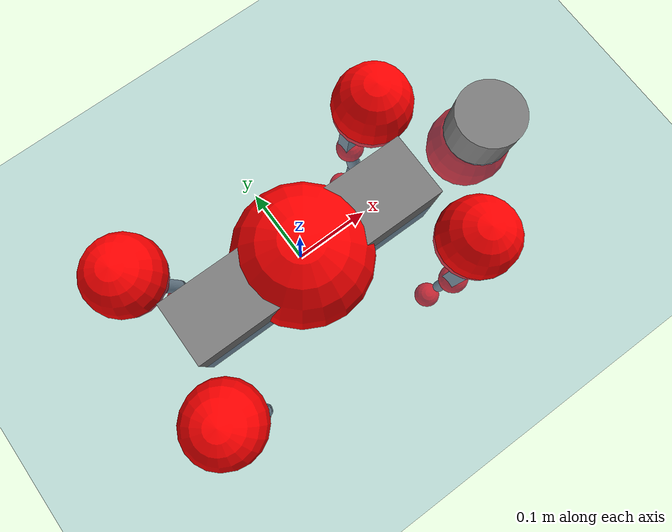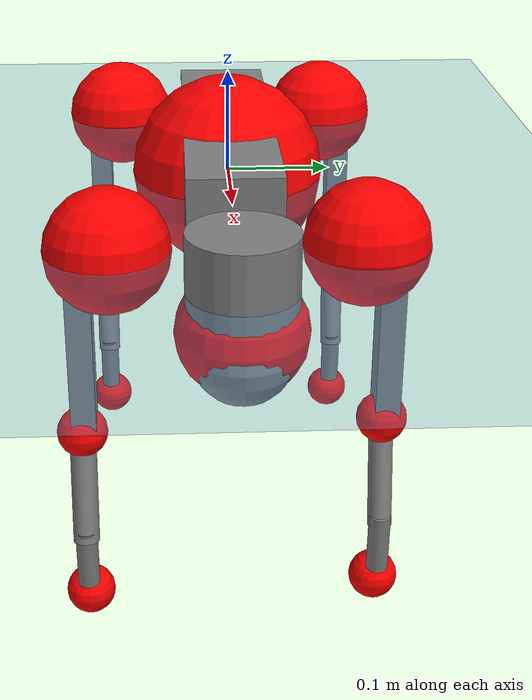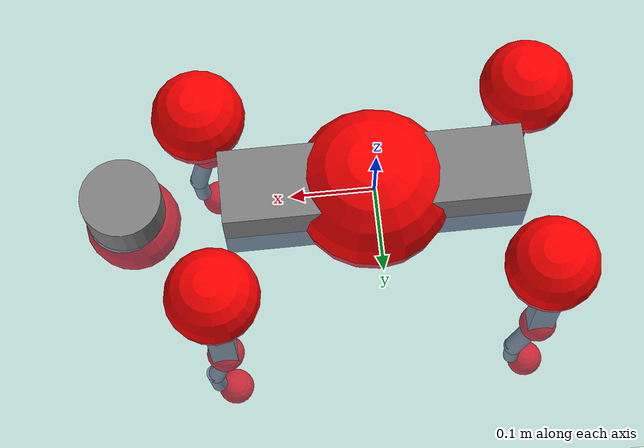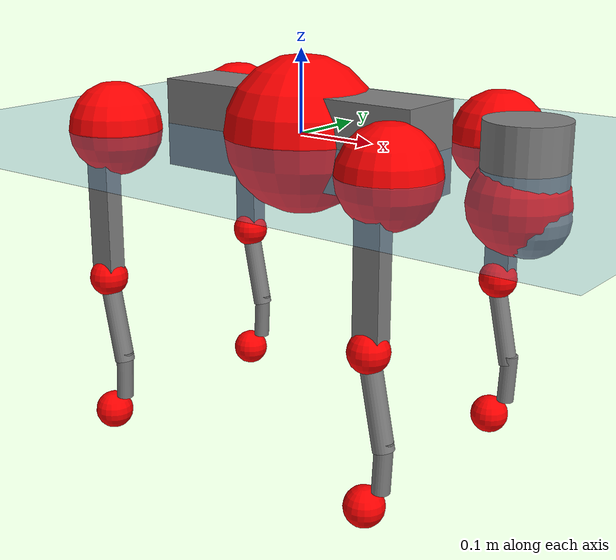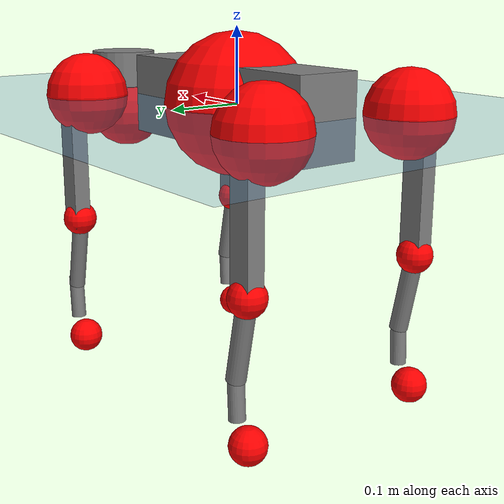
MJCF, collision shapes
<mujoco model="go2">
  <compiler angle="radian" assetdir="assets" balanceinertia="true" inertiafromgeom="false"/>

  <option timestep="0.005" density="1.2" viscosity="2e-05"/>

  <size nkey="1"/>

  <visual>
    <quality shadowsize="8192"/>
    <map shadowclip="0.5"/>
  </visual>

  <default>
    <default class="/">
      <geom contype="0" conaffinity="0" group="1" solref="-1000 -80"/>
      <site size="0.01 0.005 0.005" group="5"/>
      <general forcelimited="true" biastype="affine" gainprm="20" biasprm="0 -20 -0.5"/>
      <default class="go2">
        <joint armature="0.01" damping="0.01" frictionloss="0.2"/>
        <geom condim="1" margin="0.001"/>
        <default class="visual">
          <geom type="mesh" group="2"/>
        </default>
        <default class="collision">
          <geom group="3"/>
          <default class="foot">
            <geom size="0.022 0 0" condim="6" priority="1" friction="0.8 0.02 0.01" solimp="0.015 1 0.022"/>
          </default>
        </default>
        <default class="reward_collision_sphere">
          <geom group="5" rgba="1 0 0 1"/>
        </default>
      </default>
    </default>
  </default>

  <asset>
    <texture type="skybox" colorspace="auto" name="//unnamed_texture_0" builtin="gradient" rgb1="0.95 0.95 0.95" rgb2="0.95 0.95 0.95" width="100" height="600"/>
    <texture type="2d" colorspace="auto" name="texplane" builtin="checker" rgb1="0.345 0.575 0.748" rgb2="0.345 0.575 0.748" markrgb="1 1 1" width="512" height="512"/>
    <material name="MatPlane" class="/" texture="texplane" texuniform="true" texrepeat="2 2" specular="0.9"/>
    <material name="metal" class="/" rgba="0.9 0.95 0.95 1"/>
    <material name="black" class="/" rgba="0 0 0 1"/>
    <material name="white" class="/"/>
    <material name="gray" class="/" rgba="0.671705 0.692426 0.77427 1"/>
    <mesh name="base_0" class="/" file="base_0.obj"/>
    <mesh name="base_1" class="/" file="base_1.obj"/>
    <mesh name="base_2" class="/" file="base_2.obj"/>
    <mesh name="base_3" class="/" file="base_3.obj"/>
    <mesh name="base_4" class="/" file="base_4.obj"/>
    <mesh name="hip_0" class="/" file="hip_0.obj"/>
    <mesh name="hip_1" class="/" file="hip_1.obj"/>
    <mesh name="thigh_0" class="/" file="thigh_0.obj"/>
    <mesh name="thigh_1" class="/" file="thigh_1.obj"/>
    <mesh name="thigh_mirror_0" class="/" file="thigh_mirror_0.obj"/>
    <mesh name="thigh_mirror_1" class="/" file="thigh_mirror_1.obj"/>
    <mesh name="calf_0" class="/" file="calf_0.obj"/>
    <mesh name="calf_1" class="/" file="calf_1.obj"/>
    <mesh name="calf_mirror_0" class="/" file="calf_mirror_0.obj"/>
    <mesh name="calf_mirror_1" class="/" file="calf_mirror_1.obj"/>
    <mesh name="foot" class="/" file="foot.obj"/>
  </asset>

  <worldbody>
    <geom name="floor" class="/" size="100 100 0.125" type="plane" group="0" material="MatPlane"/>
    <light name="toplight_shadow" class="/" pos="0 0 5" dir="0.0990148 0.0990148 -0.990148" type="directional" ambient="0.04 0.04 0.04" diffuse="0.55 0.55 0.55" specular="0.12 0.12 0.12"/>
    <light name="toplight_fill" class="/" pos="0 0 5" dir="0.0990148 0.0990148 -0.990148" type="directional" castshadow="false" ambient="0.04 0.04 0.04" diffuse="0.3 0.3 0.3" specular="0.08 0.08 0.08"/>
    <body name="trunk" childclass="go2" pos="0.00255247 -0.000552265 0.000324519" quat="0.999999 0.000354791 0.00112303 -0.000102066">
      <inertial pos="0.0189295 -0.000489382 -0.00478737" quat="-0.00152684 0.7138 -0.00412001 0.700335" mass="5.55741" diaginertia="0.118578 0.079499 0.0102971"/>
      <joint name="//unnamed_joint_0" type="free" armature="0" damping="0" frictionloss="0"/>
      <geom name="//unnamed_geom_1" class="visual" material="black" mesh="base_0"/>
      <geom name="//unnamed_geom_2" class="visual" material="black" mesh="base_1"/>
      <geom name="//unnamed_geom_3" class="visual" material="black" mesh="base_2"/>
      <geom name="//unnamed_geom_4" class="visual" material="white" mesh="base_3"/>
      <geom name="//unnamed_geom_5" class="visual" material="gray" mesh="base_4"/>
      <geom name="trunk_1" class="collision" size="0.177409 0.0440928 0.0537602" type="box"/>
      <geom name="trunk_2" class="collision" size="0.0471581 0.0424423" pos="0.291556 0 0.00845095" type="cylinder"/>
      <geom name="trunk_3" class="collision" size="0.0443286" pos="0.29974 0 -0.0507057"/>
      <geom name="//unnamed_geom_9" class="reward_collision_sphere" size="0.0943162"/>
      <geom name="//unnamed_geom_10" class="reward_collision_sphere" size="0.0565897" pos="0.286441 0 -0.0380293"/>
      <site name="imu" pos="-0.0287421 0.000746465 0.0470925" size="0.00943162"/>
      <camera name="track" pos="0 -1.92277 0" quat="0.707107 0.707107 0 0" mode="trackcom"/>
      <camera name="ego_camera" pos="0.319177 0 0.0380293" quat="-0.5 -0.5 0.5 0.5"/>
      <body name="FL_hip" pos="0.198087 0.045941 0.00153514" quat="1 0.000251589 -0.000113906 0.000210673">
        <inertial pos="-0.00646841 0.000886789 9.50434e-05" quat="0.495833 0.499644 0.504867 0.499615" mass="0.565375" diaginertia="0.00101176 0.000484316 0.000206534"/>
        <joint name="FL_hip_joint" pos="0 0 0" axis="0.999889 0.00924888 0.0116553" range="-0.998694 1.04419" armature="0.00935076" damping="0.00764392" frictionloss="0.190836"/>
        <geom name="//unnamed_geom_11" class="visual" material="metal" mesh="hip_0"/>
        <geom name="//unnamed_geom_12" class="visual" material="gray" mesh="hip_1"/>
        <geom name="//unnamed_geom_13" class="collision" size="0.0433854 0.0188632" pos="0 0.0769109 0" quat="0.707107 0.707107 0 0" type="cylinder"/>
        <geom name="//unnamed_geom_14" class="reward_collision_sphere" size="0.0565897" pos="0 0.0672971 0"/>
        <body name="FL_thigh" pos="-0.00121233 0.0912856 0.00214587" quat="1 0.000724293 6.26248e-05 0.000512407">
          <inertial pos="-0.00291133 -0.0220802 -0.0297996" quat="0.829719 0.0850469 -0.0199704 0.551302" mass="0.943873" diaginertia="0.0065383 0.00474934 0.000384414"/>
          <joint name="FL_thigh_joint" pos="0 0 0" axis="-0.00712337 0.999944 0.00777254" range="-1.57262 3.49447" armature="0.00974162" damping="0.00493475" frictionloss="0.197584"/>
          <geom name="//unnamed_geom_15" class="visual" material="metal" mesh="thigh_0"/>
          <geom name="//unnamed_geom_16" class="visual" material="gray" mesh="thigh_1"/>
          <geom name="//unnamed_geom_17" class="collision" size="0.100447 0.0115537 0.0160338" pos="0 0 -0.0900027" quat="0.707107 0 0.707107 0" type="box"/>
          <body name="FL_calf" pos="-0.000640298 -0.00284175 -0.179415" quat="1 0.000114135 0.000210861 0.000154995">
            <inertial pos="0.00467502 -0.000468275 -0.117888" quat="0.709084 -0.00167588 -0.00406213 0.705111" mass="0.202308" diaginertia="0.0017135 0.00125264 2.33326e-05"/>
            <joint name="FL_calf_joint" pos="0 0 0" axis="-0.00650146 0.999978 -0.00149478" stiffness="0.0054155" range="-2.77153 -0.827318" armature="0.00939912" damping="0" frictionloss="0.188959"/>
            <geom name="//unnamed_geom_18" class="visual" material="gray" mesh="calf_0"/>
            <geom name="//unnamed_geom_19" class="visual" material="black" mesh="calf_1"/>
            <geom name="FL_calf0" class="collision" size="0.0113179 0.0565897" pos="0.00818403 0 -0.0507057" quat="0.994493 0 -0.104807 0" type="cylinder"/>
            <geom name="//unnamed_geom_21" class="collision" size="0.0103748 0.0306528" pos="0.0204601 0 -0.125074" quat="0.999688 0 0.0249974 0" type="cylinder"/>
            <geom name="//unnamed_geom_22" class="visual" pos="0 0 -0.180005" quat="1 0 0 0" material="black" mesh="foot"/>
            <geom name="FL_foot" class="foot" size="0.0183772" pos="-0.00204601 0 -0.180005"/>
            <geom name="//unnamed_geom_24" class="reward_collision_sphere" size="0.023579"/>
            <geom name="//unnamed_geom_25" class="reward_collision_sphere" size="0.023579" pos="-0.00204601 0 -0.180005"/>
            <site name="FL_foot" class="foot" pos="-0.00204601 0 -0.180005" size="0.00943162"/>
          </body>
        </body>
      </body>
      <body name="FR_hip" pos="0.198295 -0.0455805 -0.00198551" quat="1 0.000291846 -0.000497384 0.000451255">
        <inertial pos="-0.00513144 -0.0039767 -0.000641904" quat="0.499928 0.501446 0.494463 0.504113" mass="0.563562" diaginertia="0.000969266 0.000487602 0.000204126"/>
        <joint name="FR_hip_joint" pos="0 0 0" axis="0.999988 0.00426649 -0.0023744" stiffness="0.00478212" range="-1.0691 1.04749" armature="0.00897401" damping="0.0179303" frictionloss="0.169964"/>
        <geom name="//unnamed_geom_26" class="visual" pos="0 1.01308e-09 4.34531e-08" quat="4.63268e-05 1 0 0" material="metal" mesh="hip_0"/>
        <geom name="//unnamed_geom_27" class="visual" pos="0 1.64232e-09 -1.07476e-07" quat="4.63268e-05 1 0 0" material="gray" mesh="hip_1"/>
        <geom name="//unnamed_geom_28" class="collision" size="0.0433854 0.0188632" pos="0 -0.0769109 0" quat="0.707107 0.707107 0 0" type="cylinder"/>
        <geom name="//unnamed_geom_29" class="reward_collision_sphere" size="0.0565897" pos="0 -0.0672971 0"/>
        <body name="FR_thigh" pos="0.000463079 -0.0943962 -0.00137741" quat="1 -0.00031963 0.00013967 8.72984e-05">
          <inertial pos="-0.0032922 0.0200455 -0.0279778" quat="0.549931 -0.0185099 0.0882443 0.830329" mass="0.977598" diaginertia="0.00664843 0.00487381 0.00038908"/>
          <joint name="FR_thigh_joint" pos="0 0 0" axis="0.000308316 -1 -0.000627" range="-3.49077 1.60409" armature="0.00951711" damping="0.0163984" frictionloss="0.184142"/>
          <geom name="//unnamed_geom_30" class="visual" material="metal" mesh="thigh_mirror_0"/>
          <geom name="//unnamed_geom_31" class="visual" material="gray" mesh="thigh_mirror_1"/>
          <geom name="//unnamed_geom_32" class="collision" size="0.100447 0.0115537 0.0160338" pos="0 0 -0.0900027" quat="0.707107 0 0.707107 0" type="box"/>
          <body name="FR_calf" pos="-0.000591236 -0.00234202 -0.179094" quat="1 5.60718e-05 -6.27508e-06 -1.62717e-05">
            <inertial pos="0.0064757 0.0012235 -0.12012" quat="0.705468 -0.014434 -0.002479 0.708591" mass="0.201306" diaginertia="0.00166967 0.00119981 2.25177e-05"/>
            <joint name="FR_calf_joint" pos="0 0 0" axis="-0.00123785 -0.999925 0.0122187" range="0.847394 2.74733" armature="0.00987344" damping="0.0207954" frictionloss="0.195501"/>
            <geom name="//unnamed_geom_33" class="visual" material="gray" mesh="calf_mirror_0"/>
            <geom name="//unnamed_geom_34" class="visual" material="black" mesh="calf_mirror_1"/>
            <geom name="FR_calf0" class="collision" size="0.0122611 0.0565897" pos="0.01023 0 -0.0507057" quat="0.995004 0 -0.0998334 0" type="cylinder"/>
            <geom name="//unnamed_geom_36" class="collision" size="0.0103748 0.0306528" pos="0.0204601 0 -0.125074" quat="0.999688 0 0.0249974 0" type="cylinder"/>
            <geom name="//unnamed_geom_37" class="visual" pos="0 0 -0.180005" quat="1 0 0 0" material="black" mesh="foot"/>
            <geom name="FR_foot" class="foot" size="0.0230238" pos="-0.00204601 0 -0.180005"/>
            <geom name="//unnamed_geom_39" class="reward_collision_sphere" size="0.023579"/>
            <geom name="//unnamed_geom_40" class="reward_collision_sphere" size="0.023579" pos="-0.00204601 0 -0.180005"/>
            <site name="FR_foot" class="foot" pos="-0.00204601 0 -0.180005" size="0.00943162"/>
          </body>
        </body>
      </body>
      <body name="RL_hip" pos="-0.198718 0.0456709 -0.00155752" quat="1 -0.000215298 -0.000318451 0.000503271">
        <inertial pos="0.00464402 0.00469189 -0.00112794" quat="0.511887 0.501927 0.486529 0.49933" mass="0.580371" diaginertia="0.000986846 0.000484554 0.000210768"/>
        <joint name="RL_hip_joint" pos="0 0 0" axis="-0.999844 -0.00793285 -0.0157689" stiffness="0.00589793" range="-1.05039 1.03549" armature="0.00861364" damping="0.0145339" frictionloss="0.209386"/>
        <geom name="//unnamed_geom_41" class="visual" pos="-1.54986e-09 0 -3.03809e-07" quat="4.63268e-05 0 1 0" material="metal" mesh="hip_0"/>
        <geom name="//unnamed_geom_42" class="visual" pos="-2.51251e-09 0 -2.69435e-07" quat="4.63268e-05 0 1 0" material="gray" mesh="hip_1"/>
        <geom name="//unnamed_geom_43" class="collision" size="0.0433854 0.0188632" pos="0 0.0769109 0" quat="0.707107 0.707107 0 0" type="cylinder"/>
        <geom name="//unnamed_geom_44" class="reward_collision_sphere" size="0.0565897" pos="0 0.0672971 0"/>
        <body name="RL_thigh" pos="-0.000291877 0.0889555 0.00181037" quat="1 -6.44592e-05 2.38612e-06 -4.94823e-05">
          <inertial pos="-0.00368082 -0.0213392 -0.0282064" quat="0.828012 0.0858876 -0.0164251 0.55385" mass="0.983544" diaginertia="0.00661401 0.00471462 0.000378001"/>
          <joint name="RL_thigh_joint" pos="0 0 0" axis="-0.00249334 0.999979 -0.00594211" stiffness="0.00807962" range="-0.513411 4.54132" armature="0.0101065" damping="0.00813699" frictionloss="0.189663"/>
          <geom name="//unnamed_geom_45" class="visual" material="metal" mesh="thigh_0"/>
          <geom name="//unnamed_geom_46" class="visual" material="gray" mesh="thigh_1"/>
          <geom name="//unnamed_geom_47" class="collision" size="0.100447 0.0115537 0.0160338" pos="0 0 -0.0900027" quat="0.707107 0 0.707107 0" type="box"/>
          <body name="RL_calf" pos="-0.000130215 -0.000660859 -0.182535" quat="1 -1.99272e-05 0.000325279 1.96663e-05">
            <inertial pos="0.00735494 0.0020872 -0.118864" quat="0.710723 0.00167519 -0.00452813 0.703455" mass="0.199813" diaginertia="0.00164558 0.00119474 2.19045e-05"/>
            <joint name="RL_calf_joint" pos="0 0 0" axis="-0.00265732 0.999994 -0.00214719" range="-2.71973 -0.8445" armature="0.00954359" damping="0.00116921" frictionloss="0.212212"/>
            <geom name="//unnamed_geom_48" class="visual" material="gray" mesh="calf_0"/>
            <geom name="//unnamed_geom_49" class="visual" material="black" mesh="calf_1"/>
            <geom name="RL_calf0" class="collision" size="0.0122611 0.0565897" pos="0.01023 0 -0.0507057" quat="0.995004 0 -0.0998334 0" type="cylinder"/>
            <geom name="//unnamed_geom_51" class="collision" size="0.0103748 0.0306528" pos="0.0204601 0 -0.125074" quat="0.999688 0 0.0249974 0" type="cylinder"/>
            <geom name="//unnamed_geom_52" class="visual" pos="0 0 -0.180005" quat="1 0 0 0" material="black" mesh="foot"/>
            <geom name="RL_foot" class="foot" size="0.0174612" pos="-0.00204601 0 -0.180005"/>
            <geom name="//unnamed_geom_54" class="reward_collision_sphere" size="0.023579"/>
            <geom name="//unnamed_geom_55" class="reward_collision_sphere" size="0.023579" pos="-0.00204601 0 -0.180005"/>
            <site name="RL_foot" class="foot" pos="-0.00204601 0 -0.180005" size="0.00943162"/>
          </body>
        </body>
      </body>
      <body name="RR_hip" pos="-0.198738 -0.0450594 -0.000304808" quat="0.999999 -0.000397488 0.000221301 0.00103299">
        <inertial pos="0.00790673 -0.000387406 -0.00257993" quat="0.496701 0.493987 0.500055 0.509126" mass="0.569427" diaginertia="0.000995419 0.00048934 0.000206166"/>
        <joint name="RR_hip_joint" pos="0 0 0" axis="-0.999908 -0.00325199 0.0131847" stiffness="0.00123982" range="-1.06334 1.04183" armature="0.00957147" damping="0.0139086" frictionloss="0.183641"/>
        <geom name="//unnamed_geom_56" class="visual" pos="1.54773e-09 1.01308e-09 -3.47262e-07" quat="2.14617e-09 4.63268e-05 4.63268e-05 -1" material="metal" mesh="hip_0"/>
        <geom name="//unnamed_geom_57" class="visual" pos="2.51779e-09 1.64232e-09 -1.61959e-07" quat="2.14617e-09 4.63268e-05 4.63268e-05 -1" material="gray" mesh="hip_1"/>
        <geom name="//unnamed_geom_58" class="collision" size="0.0433854 0.0188632" pos="0 -0.0769109 0" quat="0.707107 0.707107 0 0" type="cylinder"/>
        <geom name="//unnamed_geom_59" class="reward_collision_sphere" size="0.0565897" pos="0 -0.0672971 0"/>
        <body name="RR_thigh" pos="0.000811782 -0.091387 -0.00275179" quat="1 -0.00020668 2.54175e-05 0.000254623">
          <inertial pos="-0.00350336 0.0212514 -0.0276932" quat="0.551562 -0.0215152 0.0855511 0.829456" mass="0.942618" diaginertia="0.00669942 0.0048517 0.000379515"/>
          <joint name="RR_thigh_joint" pos="0 0 0" axis="0.0119149 -0.999908 -0.00644132" range="-4.5343 0.565748" armature="0.0092569" damping="0.0119513" frictionloss="0.183188"/>
          <geom name="//unnamed_geom_60" class="visual" material="metal" mesh="thigh_mirror_0"/>
          <geom name="//unnamed_geom_61" class="visual" material="gray" mesh="thigh_mirror_1"/>
          <geom name="//unnamed_geom_62" class="collision" size="0.100447 0.0115537 0.0160338" pos="0 0 -0.0900027" quat="0.707107 0 0.707107 0" type="box"/>
          <body name="RR_calf" pos="-0.0009757 0.000650533 -0.180697" quat="1 -9.36668e-05 -6.11471e-07 -0.0001941">
            <inertial pos="0.00492837 0.000577524 -0.119543" quat="0.703281 -0.00449549 0.000968525 0.710897" mass="0.200537" diaginertia="0.00164716 0.00119891 2.33661e-05"/>
            <joint name="RR_calf_joint" pos="0 0 0" axis="0.00539669 -0.999844 0.0168349" range="0.857222 2.73155" armature="0.00994505" damping="0.0213779" frictionloss="0.198414"/>
            <geom name="//unnamed_geom_63" class="visual" material="gray" mesh="calf_mirror_0"/>
            <geom name="//unnamed_geom_64" class="visual" material="black" mesh="calf_mirror_1"/>
            <geom name="RR_calf0" class="collision" size="0.0122611 0.0565897" pos="0.01023 0 -0.0507057" quat="0.995004 0 -0.0998334 0" type="cylinder"/>
            <geom name="//unnamed_geom_66" class="collision" size="0.0103748 0.0306528" pos="0.0204601 0 -0.125074" quat="0.999688 0 0.0249974 0" type="cylinder"/>
            <geom name="//unnamed_geom_67" class="visual" pos="0 0 -0.180005" quat="1 0 0 0" material="black" mesh="foot"/>
            <geom name="RR_foot" class="foot" size="0.0216808" pos="-0.00204601 0 -0.180005"/>
            <geom name="//unnamed_geom_69" class="reward_collision_sphere" size="0.023579"/>
            <geom name="//unnamed_geom_70" class="reward_collision_sphere" size="0.023579" pos="-0.00204601 0 -0.180005"/>
            <site name="RR_foot" class="foot" pos="-0.00204601 0 -0.180005" size="0.00943162"/>
          </body>
        </body>
      </body>
    </body>
  </worldbody>

  <contact>
    <pair class="/" geom1="floor" geom2="FL_foot" name="//unnamed_contact_0"/>
    <pair class="/" geom1="floor" geom2="FR_foot" name="//unnamed_contact_1"/>
    <pair class="/" geom1="floor" geom2="RL_foot" name="//unnamed_contact_2"/>
    <pair class="/" geom1="floor" geom2="RR_foot" name="//unnamed_contact_3"/>
  </contact>

  <actuator>
    <general name="FL_hip" class="/" joint="FL_hip_joint" forcerange="-22.3536 22.3536" gainprm="19.162" biasprm="0 -19.162 -0.456028"/>
    <general name="FL_thigh" class="/" joint="FL_thigh_joint" forcerange="-22.345 22.345" gainprm="19.162" biasprm="0 -19.162 -0.456028"/>
    <general name="FL_calf" class="/" joint="FL_calf_joint" forcerange="-42.808 42.808" gainprm="19.162" biasprm="0 -19.162 -0.456028"/>
    <general name="FR_hip" class="/" joint="FR_hip_joint" forcerange="-22.1143 22.1143" gainprm="19.162" biasprm="0 -19.162 -0.456028"/>
    <general name="FR_thigh" class="/" joint="FR_thigh_joint" forcerange="-22.3922 22.3922" gainprm="19.162" biasprm="0 -19.162 -0.456028"/>
    <general name="FR_calf" class="/" joint="FR_calf_joint" forcerange="-42.8705 42.8705" gainprm="19.162" biasprm="0 -19.162 -0.456028"/>
    <general name="RL_hip" class="/" joint="RL_hip_joint" forcerange="-24.4064 24.4064" gainprm="19.162" biasprm="0 -19.162 -0.456028"/>
    <general name="RL_thigh" class="/" joint="RL_thigh_joint" forcerange="-22.6648 22.6648" gainprm="19.162" biasprm="0 -19.162 -0.456028"/>
    <general name="RL_calf" class="/" joint="RL_calf_joint" forcerange="-38.9772 38.9772" gainprm="19.162" biasprm="0 -19.162 -0.456028"/>
    <general name="RR_hip" class="/" joint="RR_hip_joint" forcerange="-21.4826 21.4826" gainprm="19.162" biasprm="0 -19.162 -0.456028"/>
    <general name="RR_thigh" class="/" joint="RR_thigh_joint" forcerange="-24.3358 24.3358" gainprm="19.162" biasprm="0 -19.162 -0.456028"/>
    <general name="RR_calf" class="/" joint="RR_calf_joint" forcerange="-41.6091 41.6091" gainprm="19.162" biasprm="0 -19.162 -0.456028"/>
  </actuator>

  <sensor>
    <gyro site="imu" name="imu_angular_velocity"/>
    <velocimeter site="imu" name="imu_linear_velocity"/>
    <framelinvel objtype="site" objname="FL_foot" name="FL_foot_global_linear_velocity"/>
    <framelinvel objtype="site" objname="FR_foot" name="FR_foot_global_linear_velocity"/>
    <framelinvel objtype="site" objname="RL_foot" name="RL_foot_global_linear_velocity"/>
    <framelinvel objtype="site" objname="RR_foot" name="RR_foot_global_linear_velocity"/>
  </sensor>

  <keyframe>
    <key name="home" qpos="0 0 0.325 1 0 0 0 0.1 0.8 -1.5 -0.1 -0.8 1.5 -0.1 0.8 -1.5 0.1 -0.8 1.5"/>
  </keyframe>
</mujoco>
